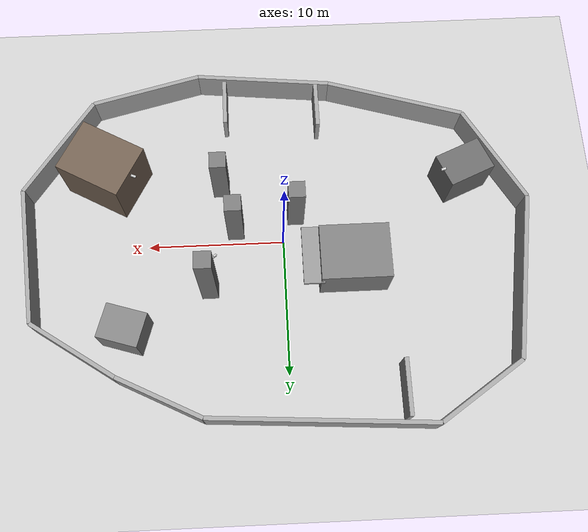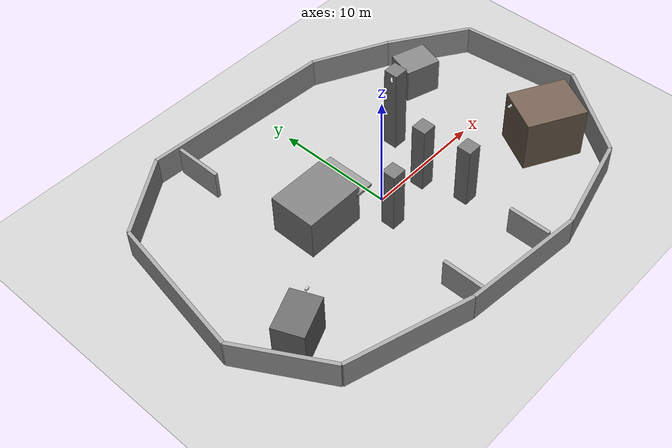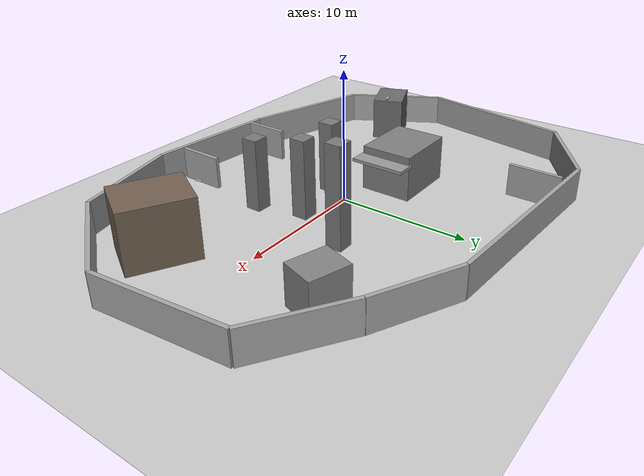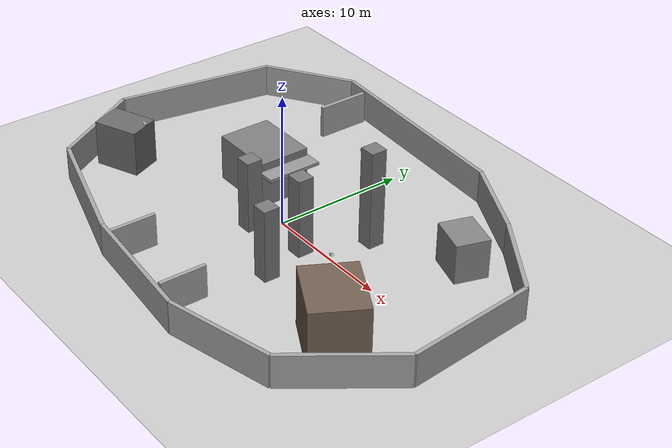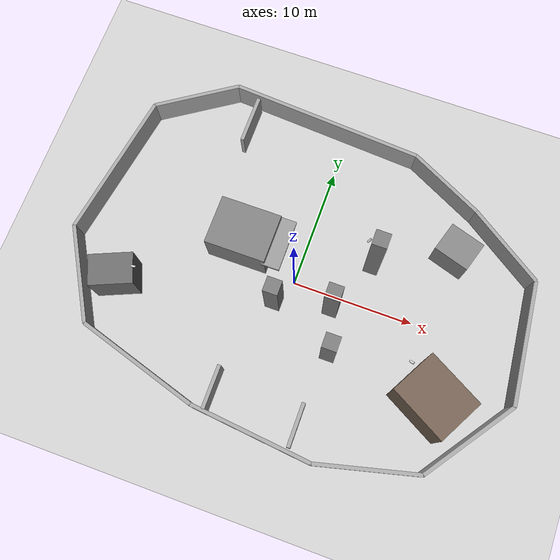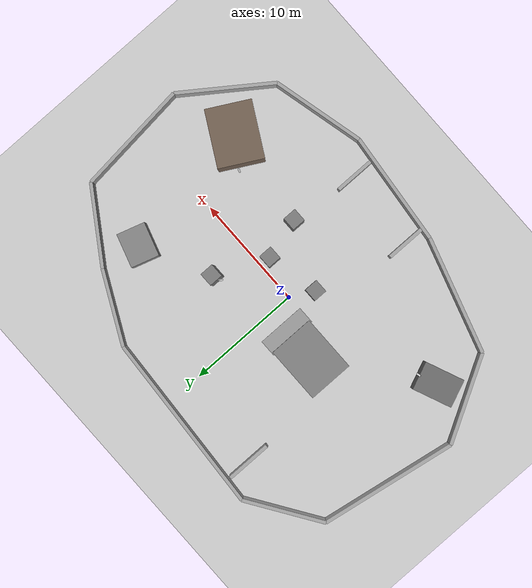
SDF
<sdf version="1.6">
 <world name="surveillance_arena">
  <plugin filename="gz-sim-physics-system" name="gz::sim::systems::Physics"/>
  <plugin filename="gz-sim-user-commands-system" name="gz::sim::systems::UserCommands"/>
  <plugin filename="gz-sim-scene-broadcaster-system" name="gz::sim::systems::SceneBroadcaster"/>
  <plugin filename="gz-sim-sensors-system" name="gz::sim::systems::Sensors">
   <render_engine>ogre2</render_engine>
  </plugin>
  <light type="directional" name="sun">
   <pose>0 0 10 0 0 0</pose>
   <diffuse>0.8 0.8 0.8 1</diffuse>
   <specular>0.2 0.2 0.2 1</specular>
   <direction>-0.5 0.1 -0.9</direction>
  </light>
  <model name="ground_plane">
   <static>true</static>
   <link name="link">
    <collision name="collision">
     <geometry><plane><normal>0 0 1</normal><size>100 100</size></plane></geometry>
    </collision>
    <visual name="visual">
     <geometry><plane><normal>0 0 1</normal><size>100 100</size></plane></geometry>
     <material><ambient>0.8 0.8 0.8 1</ambient><diffuse>0.8 0.8 0.8 1</diffuse></material>
    </visual>
   </link>
  </model>
  <model name="arena_structures">
   <static>true</static>
   <link name="wall_perim_0">
    <pose>-13.000 12.000 1.250 0 0.0000 0.5880</pose>
    <collision name="wall_perim_0_col"><geometry><box><size>7.211 0.300 2.500</size></box></geometry></collision>
    <visual name="wall_perim_0_vis">
     <geometry><box><size>7.211 0.300 2.500</size></box></geometry>
     <material><ambient>0.65 0.65 0.65 1</ambient><diffuse>0.65 0.65 0.65 1</diffuse></material>
    </visual>
   </link>
   <link name="wall_perim_1">
    <pose>-2.000 13.500 1.250 0 0.0000 -0.0624</pose>
    <collision name="wall_perim_1_col"><geometry><box><size>16.031 0.300 2.500</size></box></geometry></collision>
    <visual name="wall_perim_1_vis">
     <geometry><box><size>16.031 0.300 2.500</size></box></geometry>
     <material><ambient>0.65 0.65 0.65 1</ambient><diffuse>0.65 0.65 0.65 1</diffuse></material>
    </visual>
   </link>
   <link name="wall_perim_2">
    <pose>9.000 11.500 1.250 0 0.0000 -0.4636</pose>
    <collision name="wall_perim_2_col"><geometry><box><size>6.708 0.300 2.500</size></box></geometry></collision>
    <visual name="wall_perim_2_vis">
     <geometry><box><size>6.708 0.300 2.500</size></box></geometry>
     <material><ambient>0.65 0.65 0.65 1</ambient><diffuse>0.65 0.65 0.65 1</diffuse></material>
    </visual>
   </link>
   <link name="wall_perim_3">
    <pose>15.000 8.000 1.250 0 0.0000 -0.5880</pose>
    <collision name="wall_perim_3_col"><geometry><box><size>7.211 0.300 2.500</size></box></geometry></collision>
    <visual name="wall_perim_3_vis">
     <geometry><box><size>7.211 0.300 2.500</size></box></geometry>
     <material><ambient>0.65 0.65 0.65 1</ambient><diffuse>0.65 0.65 0.65 1</diffuse></material>
    </visual>
   </link>
   <link name="wall_perim_4">
    <pose>18.500 1.000 1.250 0 0.0000 -1.4711</pose>
    <collision name="wall_perim_4_col"><geometry><box><size>10.050 0.300 2.500</size></box></geometry></collision>
    <visual name="wall_perim_4_vis">
     <geometry><box><size>10.050 0.300 2.500</size></box></geometry>
     <material><ambient>0.65 0.65 0.65 1</ambient><diffuse>0.65 0.65 0.65 1</diffuse></material>
    </visual>
   </link>
   <link name="wall_perim_5">
    <pose>16.500 -7.500 1.250 0 0.0000 -2.1910</pose>
    <collision name="wall_perim_5_col"><geometry><box><size>8.602 0.300 2.500</size></box></geometry></collision>
    <visual name="wall_perim_5_vis">
     <geometry><box><size>8.602 0.300 2.500</size></box></geometry>
     <material><ambient>0.65 0.65 0.65 1</ambient><diffuse>0.65 0.65 0.65 1</diffuse></material>
    </visual>
   </link>
   <link name="wall_perim_6">
    <pose>10.000 -12.000 1.250 0 0.0000 -2.8966</pose>
    <collision name="wall_perim_6_col"><geometry><box><size>8.246 0.300 2.500</size></box></geometry></collision>
    <visual name="wall_perim_6_vis">
     <geometry><box><size>8.246 0.300 2.500</size></box></geometry>
     <material><ambient>0.65 0.65 0.65 1</ambient><diffuse>0.65 0.65 0.65 1</diffuse></material>
    </visual>
   </link>
   <link name="wall_perim_7">
    <pose>1.000 -12.500 1.250 0 0.0000 3.0419</pose>
    <collision name="wall_perim_7_col"><geometry><box><size>10.050 0.300 2.500</size></box></geometry></collision>
    <visual name="wall_perim_7_vis">
     <geometry><box><size>10.050 0.300 2.500</size></box></geometry>
     <material><ambient>0.65 0.65 0.65 1</ambient><diffuse>0.65 0.65 0.65 1</diffuse></material>
    </visual>
   </link>
   <link name="wall_perim_8">
    <pose>-9.000 -10.500 1.250 0 0.0000 2.8501</pose>
    <collision name="wall_perim_8_col"><geometry><box><size>10.440 0.300 2.500</size></box></geometry></collision>
    <visual name="wall_perim_8_vis">
     <geometry><box><size>10.440 0.300 2.500</size></box></geometry>
     <material><ambient>0.65 0.65 0.65 1</ambient><diffuse>0.65 0.65 0.65 1</diffuse></material>
    </visual>
   </link>
   <link name="wall_perim_9">
    <pose>-16.000 -5.500 1.250 0 0.0000 2.0899</pose>
    <collision name="wall_perim_9_col"><geometry><box><size>8.062 0.300 2.500</size></box></geometry></collision>
    <visual name="wall_perim_9_vis">
     <geometry><box><size>8.062 0.300 2.500</size></box></geometry>
     <material><ambient>0.65 0.65 0.65 1</ambient><diffuse>0.65 0.65 0.65 1</diffuse></material>
    </visual>
   </link>
   <link name="wall_perim_10">
    <pose>-17.000 4.000 1.250 0 0.0000 1.4056</pose>
    <collision name="wall_perim_10_col">
     <geometry><box><size>12.166 0.300 2.500</size></box></geometry>
    </collision>
    <visual name="wall_perim_10_vis">
     <geometry><box><size>12.166 0.300 2.500</size></box></geometry>
     <material><ambient>0.65 0.65 0.65 1</ambient><diffuse>0.65 0.65 0.65 1</diffuse></material>
    </visual>
   </link>
   <link name="wall_baffle_top">
    <pose>-8.000 11.500 1.250 0 0.0000 -1.5708</pose>
    <collision name="wall_baffle_top_col">
     <geometry><box><size>4.000 0.300 2.500</size></box></geometry>
    </collision>
    <visual name="wall_baffle_top_vis">
     <geometry><box><size>4.000 0.300 2.500</size></box></geometry>
     <material><ambient>0.65 0.65 0.65 1</ambient><diffuse>0.65 0.65 0.65 1</diffuse></material>
    </visual>
   </link>
   <link name="wall_baffle_bot1">
    <pose>-3.000 -10.250 1.250 0 0.0000 1.5708</pose>
    <collision name="wall_baffle_bot1_col">
     <geometry><box><size>3.500 0.300 2.500</size></box></geometry>
    </collision>
    <visual name="wall_baffle_bot1_vis">
     <geometry><box><size>3.500 0.300 2.500</size></box></geometry>
     <material><ambient>0.65 0.65 0.65 1</ambient><diffuse>0.65 0.65 0.65 1</diffuse></material>
    </visual>
   </link>
   <link name="wall_baffle_bot2">
    <pose>4.000 -10.750 1.250 0 0.0000 1.5708</pose>
    <collision name="wall_baffle_bot2_col">
     <geometry><box><size>3.500 0.300 2.500</size></box></geometry>
    </collision>
    <visual name="wall_baffle_bot2_vis">
     <geometry><box><size>3.500 0.300 2.500</size></box></geometry>
     <material><ambient>0.65 0.65 0.65 1</ambient><diffuse>0.65 0.65 0.65 1</diffuse></material>
    </visual>
   </link>
   <link name="shop_body">
    <pose>-5.000 2.000 1.750 0 0.0000 0.0000</pose>
    <collision name="shop_body_col"><geometry><box><size>5.000 4.000 3.500</size></box></geometry></collision>
    <visual name="shop_body_vis">
     <geometry><box><size>5.000 4.000 3.500</size></box></geometry>
     <material><ambient>0.5 0.5 0.5 1</ambient><diffuse>0.5 0.5 0.5 1</diffuse></material>
    </visual>
   </link>
   <link name="shop_canopy">
    <pose>-2.000 2.000 2.800 0 0.0000 0.0000</pose>
    <collision name="shop_canopy_col"><geometry><box><size>1.500 4.200 0.250</size></box></geometry></collision>
    <visual name="shop_canopy_vis">
     <geometry><box><size>1.500 4.200 0.250</size></box></geometry>
     <material><ambient>0.6 0.6 0.6 1</ambient><diffuse>0.6 0.6 0.6 1</diffuse></material>
    </visual>
   </link>
   <link name="pillar_1">
    <pose>-1.000 -2.000 2.750 0 0.0000 0.0000</pose>
    <collision name="pillar_1_col"><geometry><box><size>1.200 1.200 5.500</size></box></geometry></collision>
    <visual name="pillar_1_vis">
     <geometry><box><size>1.200 1.200 5.500</size></box></geometry>
     <material><ambient>0.48 0.48 0.48 1</ambient><diffuse>0.48 0.48 0.48 1</diffuse></material>
    </visual>
   </link>
   <link name="pillar_2">
    <pose>3.500 -1.000 3.000 0 0.0000 0.0000</pose>
    <collision name="pillar_2_col"><geometry><box><size>1.200 1.200 6.000</size></box></geometry></collision>
    <visual name="pillar_2_vis">
     <geometry><box><size>1.200 1.200 6.000</size></box></geometry>
     <material><ambient>0.48 0.48 0.48 1</ambient><diffuse>0.48 0.48 0.48 1</diffuse></material>
    </visual>
   </link>
   <link name="pillar_3">
    <pose>5.500 3.500 3.750 0 0.0000 0.0000</pose>
    <collision name="pillar_3_col"><geometry><box><size>1.200 1.200 7.500</size></box></geometry></collision>
    <visual name="pillar_3_vis">
     <geometry><box><size>1.200 1.200 7.500</size></box></geometry>
     <material><ambient>0.48 0.48 0.48 1</ambient><diffuse>0.48 0.48 0.48 1</diffuse></material>
    </visual>
   </link>
   <link name="pillar_4">
    <pose>4.500 -4.500 2.750 0 0.0000 0.0000</pose>
    <collision name="pillar_4_col"><geometry><box><size>1.200 1.200 5.500</size></box></geometry></collision>
    <visual name="pillar_4_vis">
     <geometry><box><size>1.200 1.200 5.500</size></box></geometry>
     <material><ambient>0.48 0.48 0.48 1</ambient><diffuse>0.48 0.48 0.48 1</diffuse></material>
    </visual>
   </link>
   <link name="shed_sw">
    <pose>-13.500 -4.500 1.750 0 0.0000 0.4000</pose>
    <collision name="shed_sw_col"><geometry><box><size>3.500 2.500 3.500</size></box></geometry></collision>
    <visual name="shed_sw_vis">
     <geometry><box><size>3.500 2.500 3.500</size></box></geometry>
     <material><ambient>0.42 0.42 0.42 1</ambient><diffuse>0.42 0.42 0.42 1</diffuse></material>
    </visual>
   </link>
   <link name="shed_se">
    <pose>13.000 -5.500 2.250 0 0.0000 -0.5000</pose>
    <collision name="shed_se_col"><geometry><box><size>5.000 4.000 4.500</size></box></geometry></collision>
    <visual name="shed_se_vis">
     <geometry><box><size>5.000 4.000 4.500</size></box></geometry>
     <material><ambient>0.45 0.38 0.32 1</ambient><diffuse>0.45 0.38 0.32 1</diffuse></material>
    </visual>
   </link>
   <link name="shed_ne">
    <pose>11.500 6.500 1.500 0 0.0000 -0.3000</pose>
    <collision name="shed_ne_col"><geometry><box><size>3.000 2.500 3.000</size></box></geometry></collision>
    <visual name="shed_ne_vis">
     <geometry><box><size>3.000 2.500 3.000</size></box></geometry>
     <material><ambient>0.52 0.52 0.52 1</ambient><diffuse>0.52 0.52 0.52 1</diffuse></material>
    </visual>
   </link>
  </model>
  <model name="cam_pillar_north">
   <static>true</static>
   <pose>4.700 3.200 7.200 0 0.7192 -2.2058</pose>
   <link name="camera_link">
    <visual name="cam_housing">
     <geometry><box><size>0.35 0.15 0.15</size></box></geometry>
     <material><ambient>0.85 0.85 0.85 1</ambient><diffuse>0.85 0.85 0.85 1</diffuse></material>
    </visual>
    <visual name="cam_lens">
     <pose>0.18 0 0 0 1.5708 0</pose>
     <geometry><cylinder><radius>0.05</radius><length>0.05</length></cylinder></geometry>
     <material><ambient>0.1 0.1 0.1 1</ambient><diffuse>0.1 0.1 0.1 1</diffuse></material>
    </visual>
    <sensor type="camera" name="cam_pillar_north_sensor">
     <topic>cam_pillar_north/image</topic>
     <update_rate>20.0</update_rate>
     <camera name="head">
      <horizontal_fov>1.22</horizontal_fov>
      <image><width>640</width><height>640</height><format>R8G8B8</format></image>
      <clip><near>0.2</near><far>50.0</far></clip>
     </camera>
    </sensor>
   </link>
  </model>
  <model name="cam_shed_sw">
   <static>true</static>
   <pose>-11.800 -3.800 3.800 0 0.1963 0.2002</pose>
   <link name="camera_link">
    <visual name="cam_housing">
     <geometry><box><size>0.35 0.15 0.15</size></box></geometry>
     <material><ambient>0.85 0.85 0.85 1</ambient><diffuse>0.85 0.85 0.85 1</diffuse></material>
    </visual>
    <visual name="cam_lens">
     <pose>0.18 0 0 0 1.5708 0</pose>
     <geometry><cylinder><radius>0.05</radius><length>0.05</length></cylinder></geometry>
     <material><ambient>0.1 0.1 0.1 1</ambient><diffuse>0.1 0.1 0.1 1</diffuse></material>
    </visual>
    <sensor type="camera" name="cam_shed_sw_sensor">
     <topic>cam_shed_sw/image</topic>
     <update_rate>20.0</update_rate>
     <camera name="head">
      <horizontal_fov>1.22</horizontal_fov>
      <image><width>640</width><height>640</height><format>R8G8B8</format></image>
      <clip><near>0.2</near><far>50.0</far></clip>
     </camera>
    </sensor>
   </link>
  </model>
  <model name="cam_building_se">
   <static>true</static>
   <pose>10.500 -3.800 4.800 0 0.3664 2.8550</pose>
   <link name="camera_link">
    <visual name="cam_housing">
     <geometry><box><size>0.35 0.15 0.15</size></box></geometry>
     <material><ambient>0.85 0.85 0.85 1</ambient><diffuse>0.85 0.85 0.85 1</diffuse></material>
    </visual>
    <visual name="cam_lens">
     <pose>0.18 0 0 0 1.5708 0</pose>
     <geometry><cylinder><radius>0.05</radius><length>0.05</length></cylinder></geometry>
     <material><ambient>0.1 0.1 0.1 1</ambient><diffuse>0.1 0.1 0.1 1</diffuse></material>
    </visual>
    <sensor type="camera" name="cam_building_se_sensor">
     <topic>cam_building_se/image</topic>
     <update_rate>20.0</update_rate>
     <camera name="head">
      <horizontal_fov>1.22</horizontal_fov>
      <image><width>640</width><height>640</height><format>R8G8B8</format></image>
      <clip><near>0.2</near><far>50.0</far></clip>
     </camera>
    </sensor>
   </link>
  </model>
 </world>
</sdf>
